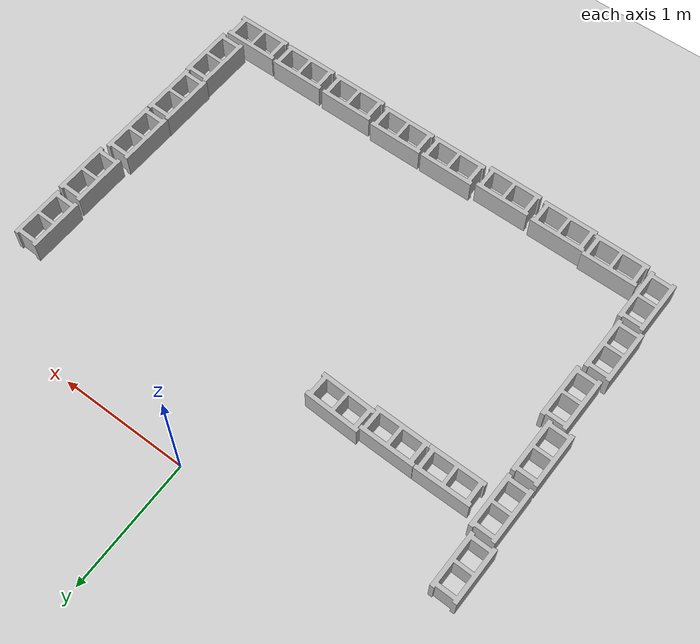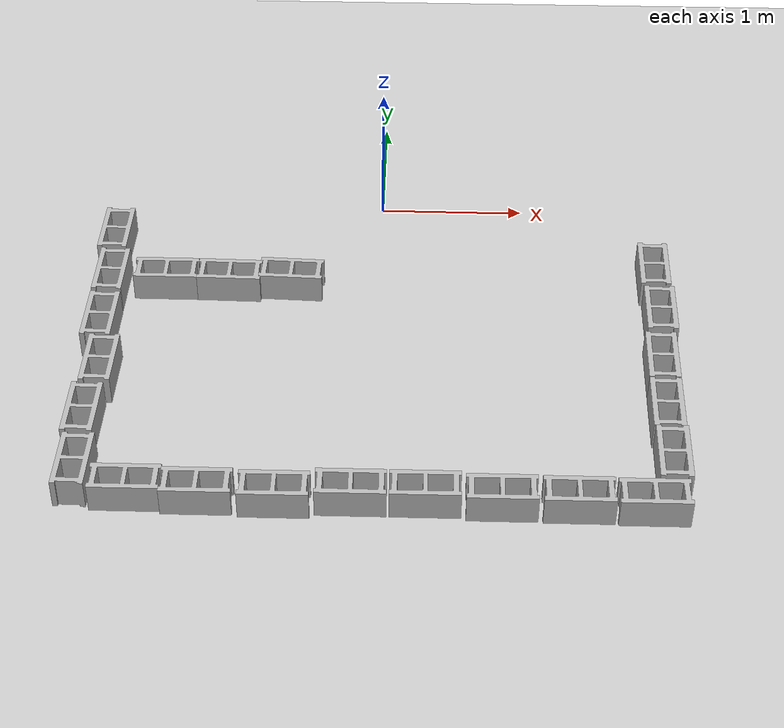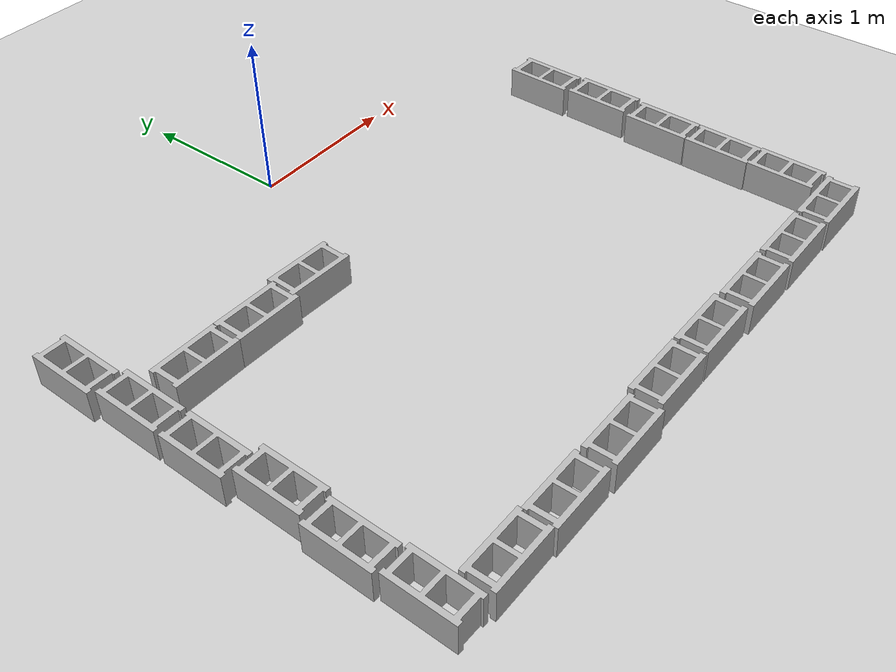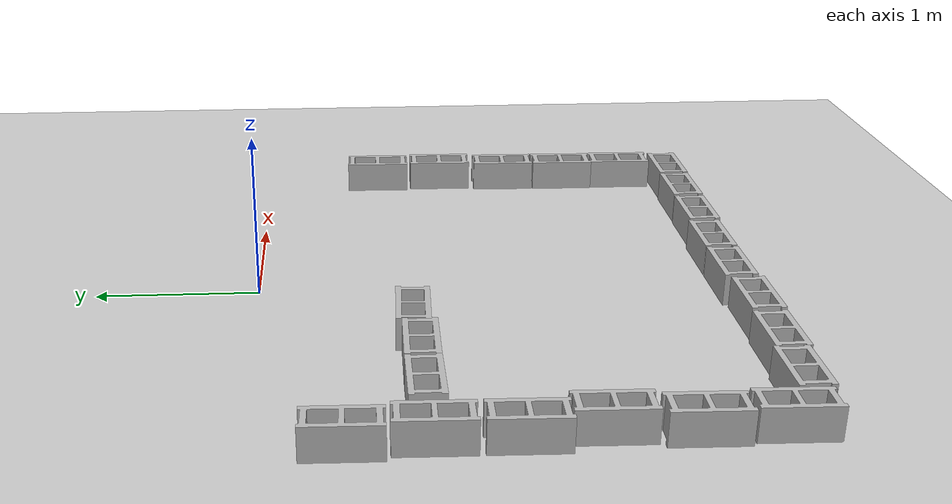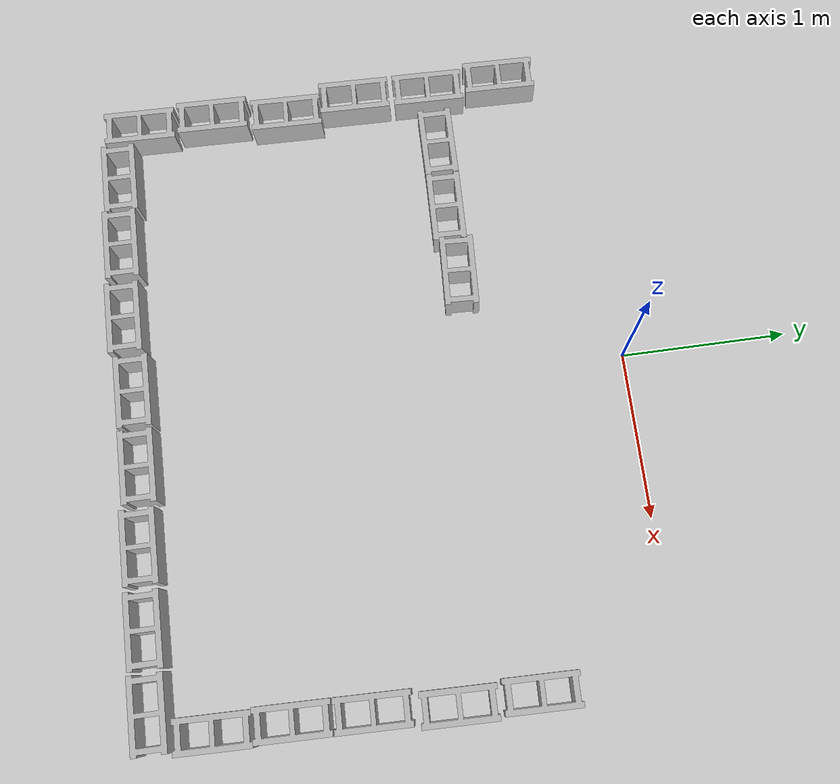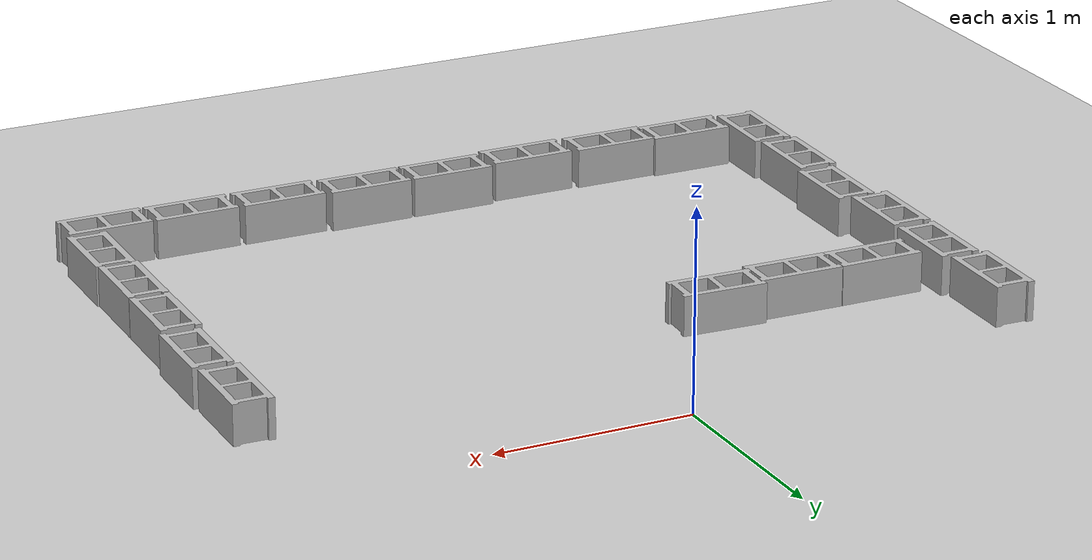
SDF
<sdf version="1.6">
 <world name="default">
  <model name="ground_plane">
   <static>1</static>
   <link name="link">
    <collision name="collision">
     <geometry><plane><normal>0 0 1</normal><size>100 100</size></plane></geometry>
     <surface>
      <contact><collide_bitmask>65535</collide_bitmask></contact>
      <friction><ode><mu>100</mu><mu2>50</mu2></ode></friction>
     </surface>
    </collision>
    <visual name="visual">
     <cast_shadows>0</cast_shadows>
     <geometry><plane><normal>0 0 1</normal><size>100 100</size></plane></geometry>
     <material>
      <script><uri>file://media/materials/scripts/gazebo.material</uri><name>Gazebo/Grey</name></script>
     </material>
    </visual>
   </link>
  </model>
  <model name="cinder_block_2_clone_clone_4">
   <link name="link">
    <inertial>
     <pose>0 0 0.1016 0 -0 0</pose>
     <mass>5</mass>
     <inertia>
      <ixx>0.028705</ixx>
      <ixy>0</ixy>
      <iyy>0.073708</iyy>
      <ixz>0</ixz>
      <iyz>0</iyz>
      <izz>0.06908</izz>
     </inertia>
    </inertial>
    <visual name="visual">
     <geometry><mesh><uri>model://cinder_block/meshes/cinder_block.dae</uri></mesh></geometry>
    </visual>
    <collision name="left">
     <pose>0 -0.08465 0.1016 0 -0 0</pose>
     <geometry><box><size>0.43495 0.0339 0.2032</size></box></geometry>
     <surface>
      <contact><ode><max_vel>0.1</max_vel><min_depth>0.001</min_depth></ode></contact>
      <friction><ode><mu>1</mu><mu2>1</mu2></ode></friction>
     </surface>
    </collision>
    <collision name="right">
     <pose>0 0.08465 0.1016 0 -0 0</pose>
     <geometry><box><size>0.43495 0.0339 0.2032</size></box></geometry>
     <surface>
      <contact><ode><max_vel>0.1</max_vel><min_depth>0.001</min_depth></ode></contact>
      <friction><ode><mu>1</mu><mu2>1</mu2></ode></friction>
     </surface>
    </collision>
    <collision name="front">
     <pose>0.18625 0 0.1016 0 -0 0</pose>
     <geometry><box><size>0.0339 0.1354 0.203</size></box></geometry>
     <surface>
      <contact><ode><max_vel>0.1</max_vel><min_depth>0.001</min_depth></ode></contact>
      <friction><ode><mu>1</mu><mu2>1</mu2></ode></friction>
     </surface>
    </collision>
    <collision name="middle">
     <pose>0 0 0.1016 0 -0 0</pose>
     <geometry><box><size>0.0339 0.1354 0.203</size></box></geometry>
     <surface>
      <contact><ode><max_vel>0.1</max_vel><min_depth>0.001</min_depth></ode></contact>
      <friction><ode><mu>1</mu><mu2>1</mu2></ode></friction>
     </surface>
    </collision>
    <collision name="back">
     <pose>-0.18625 0 0.1016 0 -0 0</pose>
     <geometry><box><size>0.0339 0.1354 0.203</size></box></geometry>
     <surface>
      <contact><ode><max_vel>0.1</max_vel><min_depth>0.001</min_depth></ode></contact>
      <friction><ode><mu>1</mu><mu2>1</mu2></ode></friction>
     </surface>
    </collision>
   </link>
   <pose>1.88676 -0.795198 -1.2e-05 5e-06 0 -1.59062</pose>
  </model>
  <model name="cinder_block_2_clone_clone_5">
   <link name="link">
    <inertial>
     <pose>0 0 0.1016 0 -0 0</pose>
     <mass>5</mass>
     <inertia>
      <ixx>0.028705</ixx>
      <ixy>0</ixy>
      <iyy>0.073708</iyy>
      <ixz>0</ixz>
      <iyz>0</iyz>
      <izz>0.06908</izz>
     </inertia>
    </inertial>
    <visual name="visual">
     <geometry><mesh><uri>model://cinder_block/meshes/cinder_block.dae</uri></mesh></geometry>
    </visual>
    <collision name="left">
     <pose>0 -0.08465 0.1016 0 -0 0</pose>
     <geometry><box><size>0.43495 0.0339 0.2032</size></box></geometry>
     <surface>
      <contact><ode><max_vel>0.1</max_vel><min_depth>0.001</min_depth></ode></contact>
      <friction><ode><mu>1</mu><mu2>1</mu2></ode></friction>
     </surface>
    </collision>
    <collision name="right">
     <pose>0 0.08465 0.1016 0 -0 0</pose>
     <geometry><box><size>0.43495 0.0339 0.2032</size></box></geometry>
     <surface>
      <contact><ode><max_vel>0.1</max_vel><min_depth>0.001</min_depth></ode></contact>
      <friction><ode><mu>1</mu><mu2>1</mu2></ode></friction>
     </surface>
    </collision>
    <collision name="front">
     <pose>0.18625 0 0.1016 0 -0 0</pose>
     <geometry><box><size>0.0339 0.1354 0.203</size></box></geometry>
     <surface>
      <contact><ode><max_vel>0.1</max_vel><min_depth>0.001</min_depth></ode></contact>
      <friction><ode><mu>1</mu><mu2>1</mu2></ode></friction>
     </surface>
    </collision>
    <collision name="middle">
     <pose>0 0 0.1016 0 -0 0</pose>
     <geometry><box><size>0.0339 0.1354 0.203</size></box></geometry>
     <surface>
      <contact><ode><max_vel>0.1</max_vel><min_depth>0.001</min_depth></ode></contact>
      <friction><ode><mu>1</mu><mu2>1</mu2></ode></friction>
     </surface>
    </collision>
    <collision name="back">
     <pose>-0.18625 0 0.1016 0 -0 0</pose>
     <geometry><box><size>0.0339 0.1354 0.203</size></box></geometry>
     <surface>
      <contact><ode><max_vel>0.1</max_vel><min_depth>0.001</min_depth></ode></contact>
      <friction><ode><mu>1</mu><mu2>1</mu2></ode></friction>
     </surface>
    </collision>
   </link>
   <pose>1.89433 -1.2558 -1.2e-05 5e-06 0 -1.59062</pose>
  </model>
  <model name="cinder_block_2_clone_clone_6">
   <link name="link">
    <inertial>
     <pose>0 0 0.1016 0 -0 0</pose>
     <mass>5</mass>
     <inertia>
      <ixx>0.028705</ixx>
      <ixy>0</ixy>
      <iyy>0.073708</iyy>
      <ixz>0</ixz>
      <iyz>0</iyz>
      <izz>0.06908</izz>
     </inertia>
    </inertial>
    <visual name="visual">
     <geometry><mesh><uri>model://cinder_block/meshes/cinder_block.dae</uri></mesh></geometry>
    </visual>
    <collision name="left">
     <pose>0 -0.08465 0.1016 0 -0 0</pose>
     <geometry><box><size>0.43495 0.0339 0.2032</size></box></geometry>
     <surface>
      <contact><ode><max_vel>0.1</max_vel><min_depth>0.001</min_depth></ode></contact>
      <friction><ode><mu>1</mu><mu2>1</mu2></ode></friction>
     </surface>
    </collision>
    <collision name="right">
     <pose>0 0.08465 0.1016 0 -0 0</pose>
     <geometry><box><size>0.43495 0.0339 0.2032</size></box></geometry>
     <surface>
      <contact><ode><max_vel>0.1</max_vel><min_depth>0.001</min_depth></ode></contact>
      <friction><ode><mu>1</mu><mu2>1</mu2></ode></friction>
     </surface>
    </collision>
    <collision name="front">
     <pose>0.18625 0 0.1016 0 -0 0</pose>
     <geometry><box><size>0.0339 0.1354 0.203</size></box></geometry>
     <surface>
      <contact><ode><max_vel>0.1</max_vel><min_depth>0.001</min_depth></ode></contact>
      <friction><ode><mu>1</mu><mu2>1</mu2></ode></friction>
     </surface>
    </collision>
    <collision name="middle">
     <pose>0 0 0.1016 0 -0 0</pose>
     <geometry><box><size>0.0339 0.1354 0.203</size></box></geometry>
     <surface>
      <contact><ode><max_vel>0.1</max_vel><min_depth>0.001</min_depth></ode></contact>
      <friction><ode><mu>1</mu><mu2>1</mu2></ode></friction>
     </surface>
    </collision>
    <collision name="back">
     <pose>-0.18625 0 0.1016 0 -0 0</pose>
     <geometry><box><size>0.0339 0.1354 0.203</size></box></geometry>
     <surface>
      <contact><ode><max_vel>0.1</max_vel><min_depth>0.001</min_depth></ode></contact>
      <friction><ode><mu>1</mu><mu2>1</mu2></ode></friction>
     </surface>
    </collision>
   </link>
   <pose>1.86231 -1.72734 -1.2e-05 5e-06 0 -1.59062</pose>
  </model>
  <model name="cinder_block_2_clone_clone_7">
   <link name="link">
    <inertial>
     <pose>0 0 0.1016 0 -0 0</pose>
     <mass>5</mass>
     <inertia>
      <ixx>0.028705</ixx>
      <ixy>0</ixy>
      <iyy>0.073708</iyy>
      <ixz>0</ixz>
      <iyz>0</iyz>
      <izz>0.06908</izz>
     </inertia>
    </inertial>
    <visual name="visual">
     <geometry><mesh><uri>model://cinder_block/meshes/cinder_block.dae</uri></mesh></geometry>
    </visual>
    <collision name="left">
     <pose>0 -0.08465 0.1016 0 -0 0</pose>
     <geometry><box><size>0.43495 0.0339 0.2032</size></box></geometry>
     <surface>
      <contact><ode><max_vel>0.1</max_vel><min_depth>0.001</min_depth></ode></contact>
      <friction><ode><mu>1</mu><mu2>1</mu2></ode></friction>
     </surface>
    </collision>
    <collision name="right">
     <pose>0 0.08465 0.1016 0 -0 0</pose>
     <geometry><box><size>0.43495 0.0339 0.2032</size></box></geometry>
     <surface>
      <contact><ode><max_vel>0.1</max_vel><min_depth>0.001</min_depth></ode></contact>
      <friction><ode><mu>1</mu><mu2>1</mu2></ode></friction>
     </surface>
    </collision>
    <collision name="front">
     <pose>0.18625 0 0.1016 0 -0 0</pose>
     <geometry><box><size>0.0339 0.1354 0.203</size></box></geometry>
     <surface>
      <contact><ode><max_vel>0.1</max_vel><min_depth>0.001</min_depth></ode></contact>
      <friction><ode><mu>1</mu><mu2>1</mu2></ode></friction>
     </surface>
    </collision>
    <collision name="middle">
     <pose>0 0 0.1016 0 -0 0</pose>
     <geometry><box><size>0.0339 0.1354 0.203</size></box></geometry>
     <surface>
      <contact><ode><max_vel>0.1</max_vel><min_depth>0.001</min_depth></ode></contact>
      <friction><ode><mu>1</mu><mu2>1</mu2></ode></friction>
     </surface>
    </collision>
    <collision name="back">
     <pose>-0.18625 0 0.1016 0 -0 0</pose>
     <geometry><box><size>0.0339 0.1354 0.203</size></box></geometry>
     <surface>
      <contact><ode><max_vel>0.1</max_vel><min_depth>0.001</min_depth></ode></contact>
      <friction><ode><mu>1</mu><mu2>1</mu2></ode></friction>
     </surface>
    </collision>
   </link>
   <pose>1.85298 -2.16877 -1.2e-05 4e-06 -0 -1.59037</pose>
  </model>
  <model name="cinder_block_2_clone_clone_8">
   <link name="link">
    <inertial>
     <pose>0 0 0.1016 0 -0 0</pose>
     <mass>5</mass>
     <inertia>
      <ixx>0.028705</ixx>
      <ixy>0</ixy>
      <iyy>0.073708</iyy>
      <ixz>0</ixz>
      <iyz>0</iyz>
      <izz>0.06908</izz>
     </inertia>
    </inertial>
    <visual name="visual">
     <geometry><mesh><uri>model://cinder_block/meshes/cinder_block.dae</uri></mesh></geometry>
    </visual>
    <collision name="left">
     <pose>0 -0.08465 0.1016 0 -0 0</pose>
     <geometry><box><size>0.43495 0.0339 0.2032</size></box></geometry>
     <surface>
      <contact><ode><max_vel>0.1</max_vel><min_depth>0.001</min_depth></ode></contact>
      <friction><ode><mu>1</mu><mu2>1</mu2></ode></friction>
     </surface>
    </collision>
    <collision name="right">
     <pose>0 0.08465 0.1016 0 -0 0</pose>
     <geometry><box><size>0.43495 0.0339 0.2032</size></box></geometry>
     <surface>
      <contact><ode><max_vel>0.1</max_vel><min_depth>0.001</min_depth></ode></contact>
      <friction><ode><mu>1</mu><mu2>1</mu2></ode></friction>
     </surface>
    </collision>
    <collision name="front">
     <pose>0.18625 0 0.1016 0 -0 0</pose>
     <geometry><box><size>0.0339 0.1354 0.203</size></box></geometry>
     <surface>
      <contact><ode><max_vel>0.1</max_vel><min_depth>0.001</min_depth></ode></contact>
      <friction><ode><mu>1</mu><mu2>1</mu2></ode></friction>
     </surface>
    </collision>
    <collision name="middle">
     <pose>0 0 0.1016 0 -0 0</pose>
     <geometry><box><size>0.0339 0.1354 0.203</size></box></geometry>
     <surface>
      <contact><ode><max_vel>0.1</max_vel><min_depth>0.001</min_depth></ode></contact>
      <friction><ode><mu>1</mu><mu2>1</mu2></ode></friction>
     </surface>
    </collision>
    <collision name="back">
     <pose>-0.18625 0 0.1016 0 -0 0</pose>
     <geometry><box><size>0.0339 0.1354 0.203</size></box></geometry>
     <surface>
      <contact><ode><max_vel>0.1</max_vel><min_depth>0.001</min_depth></ode></contact>
      <friction><ode><mu>1</mu><mu2>1</mu2></ode></friction>
     </surface>
    </collision>
   </link>
   <pose>1.85442 -2.60304 -1.2e-05 4e-06 -0 -1.59037</pose>
  </model>
  <model name="cinder_block_1_clone">
   <link name="link">
    <inertial>
     <pose>0 0 0.1016 0 -0 0</pose>
     <mass>5</mass>
     <inertia>
      <ixx>0.028705</ixx>
      <ixy>0</ixy>
      <iyy>0.073708</iyy>
      <ixz>0</ixz>
      <iyz>0</iyz>
      <izz>0.06908</izz>
     </inertia>
    </inertial>
    <visual name="visual">
     <geometry><mesh><uri>model://cinder_block/meshes/cinder_block.dae</uri></mesh></geometry>
    </visual>
    <collision name="left">
     <pose>0 -0.08465 0.1016 0 -0 0</pose>
     <geometry><box><size>0.43495 0.0339 0.2032</size></box></geometry>
     <surface>
      <contact><ode><max_vel>0.1</max_vel><min_depth>0.001</min_depth></ode></contact>
      <friction><ode><mu>1</mu><mu2>1</mu2></ode></friction>
     </surface>
    </collision>
    <collision name="right">
     <pose>0 0.08465 0.1016 0 -0 0</pose>
     <geometry><box><size>0.43495 0.0339 0.2032</size></box></geometry>
     <surface>
      <contact><ode><max_vel>0.1</max_vel><min_depth>0.001</min_depth></ode></contact>
      <friction><ode><mu>1</mu><mu2>1</mu2></ode></friction>
     </surface>
    </collision>
    <collision name="front">
     <pose>0.18625 0 0.1016 0 -0 0</pose>
     <geometry><box><size>0.0339 0.1354 0.203</size></box></geometry>
     <surface>
      <contact><ode><max_vel>0.1</max_vel><min_depth>0.001</min_depth></ode></contact>
      <friction><ode><mu>1</mu><mu2>1</mu2></ode></friction>
     </surface>
    </collision>
    <collision name="middle">
     <pose>0 0 0.1016 0 -0 0</pose>
     <geometry><box><size>0.0339 0.1354 0.203</size></box></geometry>
     <surface>
      <contact><ode><max_vel>0.1</max_vel><min_depth>0.001</min_depth></ode></contact>
      <friction><ode><mu>1</mu><mu2>1</mu2></ode></friction>
     </surface>
    </collision>
    <collision name="back">
     <pose>-0.18625 0 0.1016 0 -0 0</pose>
     <geometry><box><size>0.0339 0.1354 0.203</size></box></geometry>
     <surface>
      <contact><ode><max_vel>0.1</max_vel><min_depth>0.001</min_depth></ode></contact>
      <friction><ode><mu>1</mu><mu2>1</mu2></ode></friction>
     </surface>
    </collision>
   </link>
   <pose>1.70955 -2.94654 -6e-06 5e-06 2.5e-05 0</pose>
  </model>
  <model name="cinder_block_1_clone_0">
   <link name="link">
    <inertial>
     <pose>0 0 0.1016 0 -0 0</pose>
     <mass>5</mass>
     <inertia>
      <ixx>0.028705</ixx>
      <ixy>0</ixy>
      <iyy>0.073708</iyy>
      <ixz>0</ixz>
      <iyz>0</iyz>
      <izz>0.06908</izz>
     </inertia>
    </inertial>
    <visual name="visual">
     <geometry><mesh><uri>model://cinder_block/meshes/cinder_block.dae</uri></mesh></geometry>
    </visual>
    <collision name="left">
     <pose>0 -0.08465 0.1016 0 -0 0</pose>
     <geometry><box><size>0.43495 0.0339 0.2032</size></box></geometry>
     <surface>
      <contact><ode><max_vel>0.1</max_vel><min_depth>0.001</min_depth></ode></contact>
      <friction><ode><mu>1</mu><mu2>1</mu2></ode></friction>
     </surface>
    </collision>
    <collision name="right">
     <pose>0 0.08465 0.1016 0 -0 0</pose>
     <geometry><box><size>0.43495 0.0339 0.2032</size></box></geometry>
     <surface>
      <contact><ode><max_vel>0.1</max_vel><min_depth>0.001</min_depth></ode></contact>
      <friction><ode><mu>1</mu><mu2>1</mu2></ode></friction>
     </surface>
    </collision>
    <collision name="front">
     <pose>0.18625 0 0.1016 0 -0 0</pose>
     <geometry><box><size>0.0339 0.1354 0.203</size></box></geometry>
     <surface>
      <contact><ode><max_vel>0.1</max_vel><min_depth>0.001</min_depth></ode></contact>
      <friction><ode><mu>1</mu><mu2>1</mu2></ode></friction>
     </surface>
    </collision>
    <collision name="middle">
     <pose>0 0 0.1016 0 -0 0</pose>
     <geometry><box><size>0.0339 0.1354 0.203</size></box></geometry>
     <surface>
      <contact><ode><max_vel>0.1</max_vel><min_depth>0.001</min_depth></ode></contact>
      <friction><ode><mu>1</mu><mu2>1</mu2></ode></friction>
     </surface>
    </collision>
    <collision name="back">
     <pose>-0.18625 0 0.1016 0 -0 0</pose>
     <geometry><box><size>0.0339 0.1354 0.203</size></box></geometry>
     <surface>
      <contact><ode><max_vel>0.1</max_vel><min_depth>0.001</min_depth></ode></contact>
      <friction><ode><mu>1</mu><mu2>1</mu2></ode></friction>
     </surface>
    </collision>
   </link>
   <pose>1.25685 -2.9397 -6e-06 5e-06 2.5e-05 0</pose>
  </model>
  <model name="cinder_block_1_clone_1">
   <link name="link">
    <inertial>
     <pose>0 0 0.1016 0 -0 0</pose>
     <mass>5</mass>
     <inertia>
      <ixx>0.028705</ixx>
      <ixy>0</ixy>
      <iyy>0.073708</iyy>
      <ixz>0</ixz>
      <iyz>0</iyz>
      <izz>0.06908</izz>
     </inertia>
    </inertial>
    <visual name="visual">
     <geometry><mesh><uri>model://cinder_block/meshes/cinder_block.dae</uri></mesh></geometry>
    </visual>
    <collision name="left">
     <pose>0 -0.08465 0.1016 0 -0 0</pose>
     <geometry><box><size>0.43495 0.0339 0.2032</size></box></geometry>
     <surface>
      <contact><ode><max_vel>0.1</max_vel><min_depth>0.001</min_depth></ode></contact>
      <friction><ode><mu>1</mu><mu2>1</mu2></ode></friction>
     </surface>
    </collision>
    <collision name="right">
     <pose>0 0.08465 0.1016 0 -0 0</pose>
     <geometry><box><size>0.43495 0.0339 0.2032</size></box></geometry>
     <surface>
      <contact><ode><max_vel>0.1</max_vel><min_depth>0.001</min_depth></ode></contact>
      <friction><ode><mu>1</mu><mu2>1</mu2></ode></friction>
     </surface>
    </collision>
    <collision name="front">
     <pose>0.18625 0 0.1016 0 -0 0</pose>
     <geometry><box><size>0.0339 0.1354 0.203</size></box></geometry>
     <surface>
      <contact><ode><max_vel>0.1</max_vel><min_depth>0.001</min_depth></ode></contact>
      <friction><ode><mu>1</mu><mu2>1</mu2></ode></friction>
     </surface>
    </collision>
    <collision name="middle">
     <pose>0 0 0.1016 0 -0 0</pose>
     <geometry><box><size>0.0339 0.1354 0.203</size></box></geometry>
     <surface>
      <contact><ode><max_vel>0.1</max_vel><min_depth>0.001</min_depth></ode></contact>
      <friction><ode><mu>1</mu><mu2>1</mu2></ode></friction>
     </surface>
    </collision>
    <collision name="back">
     <pose>-0.18625 0 0.1016 0 -0 0</pose>
     <geometry><box><size>0.0339 0.1354 0.203</size></box></geometry>
     <surface>
      <contact><ode><max_vel>0.1</max_vel><min_depth>0.001</min_depth></ode></contact>
      <friction><ode><mu>1</mu><mu2>1</mu2></ode></friction>
     </surface>
    </collision>
   </link>
   <pose>0.793336 -2.93487 -6e-06 5e-06 2.5e-05 0</pose>
  </model>
  <model name="cinder_block_1_clone_2">
   <link name="link">
    <inertial>
     <pose>0 0 0.1016 0 -0 0</pose>
     <mass>5</mass>
     <inertia>
      <ixx>0.028705</ixx>
      <ixy>0</ixy>
      <iyy>0.073708</iyy>
      <ixz>0</ixz>
      <iyz>0</iyz>
      <izz>0.06908</izz>
     </inertia>
    </inertial>
    <visual name="visual">
     <geometry><mesh><uri>model://cinder_block/meshes/cinder_block.dae</uri></mesh></geometry>
    </visual>
    <collision name="left">
     <pose>0 -0.08465 0.1016 0 -0 0</pose>
     <geometry><box><size>0.43495 0.0339 0.2032</size></box></geometry>
     <surface>
      <contact><ode><max_vel>0.1</max_vel><min_depth>0.001</min_depth></ode></contact>
      <friction><ode><mu>1</mu><mu2>1</mu2></ode></friction>
     </surface>
    </collision>
    <collision name="right">
     <pose>0 0.08465 0.1016 0 -0 0</pose>
     <geometry><box><size>0.43495 0.0339 0.2032</size></box></geometry>
     <surface>
      <contact><ode><max_vel>0.1</max_vel><min_depth>0.001</min_depth></ode></contact>
      <friction><ode><mu>1</mu><mu2>1</mu2></ode></friction>
     </surface>
    </collision>
    <collision name="front">
     <pose>0.18625 0 0.1016 0 -0 0</pose>
     <geometry><box><size>0.0339 0.1354 0.203</size></box></geometry>
     <surface>
      <contact><ode><max_vel>0.1</max_vel><min_depth>0.001</min_depth></ode></contact>
      <friction><ode><mu>1</mu><mu2>1</mu2></ode></friction>
     </surface>
    </collision>
    <collision name="middle">
     <pose>0 0 0.1016 0 -0 0</pose>
     <geometry><box><size>0.0339 0.1354 0.203</size></box></geometry>
     <surface>
      <contact><ode><max_vel>0.1</max_vel><min_depth>0.001</min_depth></ode></contact>
      <friction><ode><mu>1</mu><mu2>1</mu2></ode></friction>
     </surface>
    </collision>
    <collision name="back">
     <pose>-0.18625 0 0.1016 0 -0 0</pose>
     <geometry><box><size>0.0339 0.1354 0.203</size></box></geometry>
     <surface>
      <contact><ode><max_vel>0.1</max_vel><min_depth>0.001</min_depth></ode></contact>
      <friction><ode><mu>1</mu><mu2>1</mu2></ode></friction>
     </surface>
    </collision>
   </link>
   <pose>0.330626 -2.91648 -6e-06 5e-06 2.5e-05 0</pose>
  </model>
  <model name="cinder_block_1_clone_3">
   <link name="link">
    <inertial>
     <pose>0 0 0.1016 0 -0 0</pose>
     <mass>5</mass>
     <inertia>
      <ixx>0.028705</ixx>
      <ixy>0</ixy>
      <iyy>0.073708</iyy>
      <ixz>0</ixz>
      <iyz>0</iyz>
      <izz>0.06908</izz>
     </inertia>
    </inertial>
    <visual name="visual">
     <geometry><mesh><uri>model://cinder_block/meshes/cinder_block.dae</uri></mesh></geometry>
    </visual>
    <collision name="left">
     <pose>0 -0.08465 0.1016 0 -0 0</pose>
     <geometry><box><size>0.43495 0.0339 0.2032</size></box></geometry>
     <surface>
      <contact><ode><max_vel>0.1</max_vel><min_depth>0.001</min_depth></ode></contact>
      <friction><ode><mu>1</mu><mu2>1</mu2></ode></friction>
     </surface>
    </collision>
    <collision name="right">
     <pose>0 0.08465 0.1016 0 -0 0</pose>
     <geometry><box><size>0.43495 0.0339 0.2032</size></box></geometry>
     <surface>
      <contact><ode><max_vel>0.1</max_vel><min_depth>0.001</min_depth></ode></contact>
      <friction><ode><mu>1</mu><mu2>1</mu2></ode></friction>
     </surface>
    </collision>
    <collision name="front">
     <pose>0.18625 0 0.1016 0 -0 0</pose>
     <geometry><box><size>0.0339 0.1354 0.203</size></box></geometry>
     <surface>
      <contact><ode><max_vel>0.1</max_vel><min_depth>0.001</min_depth></ode></contact>
      <friction><ode><mu>1</mu><mu2>1</mu2></ode></friction>
     </surface>
    </collision>
    <collision name="middle">
     <pose>0 0 0.1016 0 -0 0</pose>
     <geometry><box><size>0.0339 0.1354 0.203</size></box></geometry>
     <surface>
      <contact><ode><max_vel>0.1</max_vel><min_depth>0.001</min_depth></ode></contact>
      <friction><ode><mu>1</mu><mu2>1</mu2></ode></friction>
     </surface>
    </collision>
    <collision name="back">
     <pose>-0.18625 0 0.1016 0 -0 0</pose>
     <geometry><box><size>0.0339 0.1354 0.203</size></box></geometry>
     <surface>
      <contact><ode><max_vel>0.1</max_vel><min_depth>0.001</min_depth></ode></contact>
      <friction><ode><mu>1</mu><mu2>1</mu2></ode></friction>
     </surface>
    </collision>
   </link>
   <pose>-0.120653 -2.91612 -6e-06 4e-06 2.5e-05 -0</pose>
  </model>
  <model name="cinder_block_1_clone_4">
   <link name="link">
    <inertial>
     <pose>0 0 0.1016 0 -0 0</pose>
     <mass>5</mass>
     <inertia>
      <ixx>0.028705</ixx>
      <ixy>0</ixy>
      <iyy>0.073708</iyy>
      <ixz>0</ixz>
      <iyz>0</iyz>
      <izz>0.06908</izz>
     </inertia>
    </inertial>
    <visual name="visual">
     <geometry><mesh><uri>model://cinder_block/meshes/cinder_block.dae</uri></mesh></geometry>
    </visual>
    <collision name="left">
     <pose>0 -0.08465 0.1016 0 -0 0</pose>
     <geometry><box><size>0.43495 0.0339 0.2032</size></box></geometry>
     <surface>
      <contact><ode><max_vel>0.1</max_vel><min_depth>0.001</min_depth></ode></contact>
      <friction><ode><mu>1</mu><mu2>1</mu2></ode></friction>
     </surface>
    </collision>
    <collision name="right">
     <pose>0 0.08465 0.1016 0 -0 0</pose>
     <geometry><box><size>0.43495 0.0339 0.2032</size></box></geometry>
     <surface>
      <contact><ode><max_vel>0.1</max_vel><min_depth>0.001</min_depth></ode></contact>
      <friction><ode><mu>1</mu><mu2>1</mu2></ode></friction>
     </surface>
    </collision>
    <collision name="front">
     <pose>0.18625 0 0.1016 0 -0 0</pose>
     <geometry><box><size>0.0339 0.1354 0.203</size></box></geometry>
     <surface>
      <contact><ode><max_vel>0.1</max_vel><min_depth>0.001</min_depth></ode></contact>
      <friction><ode><mu>1</mu><mu2>1</mu2></ode></friction>
     </surface>
    </collision>
    <collision name="middle">
     <pose>0 0 0.1016 0 -0 0</pose>
     <geometry><box><size>0.0339 0.1354 0.203</size></box></geometry>
     <surface>
      <contact><ode><max_vel>0.1</max_vel><min_depth>0.001</min_depth></ode></contact>
      <friction><ode><mu>1</mu><mu2>1</mu2></ode></friction>
     </surface>
    </collision>
    <collision name="back">
     <pose>-0.18625 0 0.1016 0 -0 0</pose>
     <geometry><box><size>0.0339 0.1354 0.203</size></box></geometry>
     <surface>
      <contact><ode><max_vel>0.1</max_vel><min_depth>0.001</min_depth></ode></contact>
      <friction><ode><mu>1</mu><mu2>1</mu2></ode></friction>
     </surface>
    </collision>
   </link>
   <pose>-0.583641 -2.94236 -6e-06 4e-06 2.5e-05 -0</pose>
  </model>
  <model name="cinder_block_1_clone_5">
   <link name="link">
    <inertial>
     <pose>0 0 0.1016 0 -0 0</pose>
     <mass>5</mass>
     <inertia>
      <ixx>0.028705</ixx>
      <ixy>0</ixy>
      <iyy>0.073708</iyy>
      <ixz>0</ixz>
      <iyz>0</iyz>
      <izz>0.06908</izz>
     </inertia>
    </inertial>
    <visual name="visual">
     <geometry><mesh><uri>model://cinder_block/meshes/cinder_block.dae</uri></mesh></geometry>
    </visual>
    <collision name="left">
     <pose>0 -0.08465 0.1016 0 -0 0</pose>
     <geometry><box><size>0.43495 0.0339 0.2032</size></box></geometry>
     <surface>
      <contact><ode><max_vel>0.1</max_vel><min_depth>0.001</min_depth></ode></contact>
      <friction><ode><mu>1</mu><mu2>1</mu2></ode></friction>
     </surface>
    </collision>
    <collision name="right">
     <pose>0 0.08465 0.1016 0 -0 0</pose>
     <geometry><box><size>0.43495 0.0339 0.2032</size></box></geometry>
     <surface>
      <contact><ode><max_vel>0.1</max_vel><min_depth>0.001</min_depth></ode></contact>
      <friction><ode><mu>1</mu><mu2>1</mu2></ode></friction>
     </surface>
    </collision>
    <collision name="front">
     <pose>0.18625 0 0.1016 0 -0 0</pose>
     <geometry><box><size>0.0339 0.1354 0.203</size></box></geometry>
     <surface>
      <contact><ode><max_vel>0.1</max_vel><min_depth>0.001</min_depth></ode></contact>
      <friction><ode><mu>1</mu><mu2>1</mu2></ode></friction>
     </surface>
    </collision>
    <collision name="middle">
     <pose>0 0 0.1016 0 -0 0</pose>
     <geometry><box><size>0.0339 0.1354 0.203</size></box></geometry>
     <surface>
      <contact><ode><max_vel>0.1</max_vel><min_depth>0.001</min_depth></ode></contact>
      <friction><ode><mu>1</mu><mu2>1</mu2></ode></friction>
     </surface>
    </collision>
    <collision name="back">
     <pose>-0.18625 0 0.1016 0 -0 0</pose>
     <geometry><box><size>0.0339 0.1354 0.203</size></box></geometry>
     <surface>
      <contact><ode><max_vel>0.1</max_vel><min_depth>0.001</min_depth></ode></contact>
      <friction><ode><mu>1</mu><mu2>1</mu2></ode></friction>
     </surface>
    </collision>
   </link>
   <pose>-1.05287 -2.93023 -6e-06 2e-06 3e-05 -0.000831</pose>
  </model>
  <model name="cinder_block_1_clone_6">
   <link name="link">
    <inertial>
     <pose>0 0 0.1016 0 -0 0</pose>
     <mass>5</mass>
     <inertia>
      <ixx>0.028705</ixx>
      <ixy>0</ixy>
      <iyy>0.073708</iyy>
      <ixz>0</ixz>
      <iyz>0</iyz>
      <izz>0.06908</izz>
     </inertia>
    </inertial>
    <visual name="visual">
     <geometry><mesh><uri>model://cinder_block/meshes/cinder_block.dae</uri></mesh></geometry>
    </visual>
    <collision name="left">
     <pose>0 -0.08465 0.1016 0 -0 0</pose>
     <geometry><box><size>0.43495 0.0339 0.2032</size></box></geometry>
     <surface>
      <contact><ode><max_vel>0.1</max_vel><min_depth>0.001</min_depth></ode></contact>
      <friction><ode><mu>1</mu><mu2>1</mu2></ode></friction>
     </surface>
    </collision>
    <collision name="right">
     <pose>0 0.08465 0.1016 0 -0 0</pose>
     <geometry><box><size>0.43495 0.0339 0.2032</size></box></geometry>
     <surface>
      <contact><ode><max_vel>0.1</max_vel><min_depth>0.001</min_depth></ode></contact>
      <friction><ode><mu>1</mu><mu2>1</mu2></ode></friction>
     </surface>
    </collision>
    <collision name="front">
     <pose>0.18625 0 0.1016 0 -0 0</pose>
     <geometry><box><size>0.0339 0.1354 0.203</size></box></geometry>
     <surface>
      <contact><ode><max_vel>0.1</max_vel><min_depth>0.001</min_depth></ode></contact>
      <friction><ode><mu>1</mu><mu2>1</mu2></ode></friction>
     </surface>
    </collision>
    <collision name="middle">
     <pose>0 0 0.1016 0 -0 0</pose>
     <geometry><box><size>0.0339 0.1354 0.203</size></box></geometry>
     <surface>
      <contact><ode><max_vel>0.1</max_vel><min_depth>0.001</min_depth></ode></contact>
      <friction><ode><mu>1</mu><mu2>1</mu2></ode></friction>
     </surface>
    </collision>
    <collision name="back">
     <pose>-0.18625 0 0.1016 0 -0 0</pose>
     <geometry><box><size>0.0339 0.1354 0.203</size></box></geometry>
     <surface>
      <contact><ode><max_vel>0.1</max_vel><min_depth>0.001</min_depth></ode></contact>
      <friction><ode><mu>1</mu><mu2>1</mu2></ode></friction>
     </surface>
    </collision>
   </link>
   <pose>-1.48702 -2.9119 -1.3e-05 0 -8e-06 -0.000853</pose>
  </model>
  <model name="cinder_block_2_clone_clone_6_clone">
   <link name="link">
    <inertial>
     <pose>0 0 0.1016 0 -0 0</pose>
     <mass>5</mass>
     <inertia>
      <ixx>0.028705</ixx>
      <ixy>0</ixy>
      <iyy>0.073708</iyy>
      <ixz>0</ixz>
      <iyz>0</iyz>
      <izz>0.06908</izz>
     </inertia>
    </inertial>
    <visual name="visual">
     <geometry><mesh><uri>model://cinder_block/meshes/cinder_block.dae</uri></mesh></geometry>
    </visual>
    <collision name="left">
     <pose>0 -0.08465 0.1016 0 -0 0</pose>
     <geometry><box><size>0.43495 0.0339 0.2032</size></box></geometry>
     <surface>
      <contact><ode><max_vel>0.1</max_vel><min_depth>0.001</min_depth></ode></contact>
      <friction><ode><mu>1</mu><mu2>1</mu2></ode></friction>
     </surface>
    </collision>
    <collision name="right">
     <pose>0 0.08465 0.1016 0 -0 0</pose>
     <geometry><box><size>0.43495 0.0339 0.2032</size></box></geometry>
     <surface>
      <contact><ode><max_vel>0.1</max_vel><min_depth>0.001</min_depth></ode></contact>
      <friction><ode><mu>1</mu><mu2>1</mu2></ode></friction>
     </surface>
    </collision>
    <collision name="front">
     <pose>0.18625 0 0.1016 0 -0 0</pose>
     <geometry><box><size>0.0339 0.1354 0.203</size></box></geometry>
     <surface>
      <contact><ode><max_vel>0.1</max_vel><min_depth>0.001</min_depth></ode></contact>
      <friction><ode><mu>1</mu><mu2>1</mu2></ode></friction>
     </surface>
    </collision>
    <collision name="middle">
     <pose>0 0 0.1016 0 -0 0</pose>
     <geometry><box><size>0.0339 0.1354 0.203</size></box></geometry>
     <surface>
      <contact><ode><max_vel>0.1</max_vel><min_depth>0.001</min_depth></ode></contact>
      <friction><ode><mu>1</mu><mu2>1</mu2></ode></friction>
     </surface>
    </collision>
    <collision name="back">
     <pose>-0.18625 0 0.1016 0 -0 0</pose>
     <geometry><box><size>0.0339 0.1354 0.203</size></box></geometry>
     <surface>
      <contact><ode><max_vel>0.1</max_vel><min_depth>0.001</min_depth></ode></contact>
      <friction><ode><mu>1</mu><mu2>1</mu2></ode></friction>
     </surface>
    </collision>
   </link>
   <pose>-1.82293 -2.76743 -1.2e-05 5e-06 0 -1.59062</pose>
  </model>
  <model name="cinder_block_2_clone_clone_6_clone_0">
   <link name="link">
    <inertial>
     <pose>0 0 0.1016 0 -0 0</pose>
     <mass>5</mass>
     <inertia>
      <ixx>0.028705</ixx>
      <ixy>0</ixy>
      <iyy>0.073708</iyy>
      <ixz>0</ixz>
      <iyz>0</iyz>
      <izz>0.06908</izz>
     </inertia>
    </inertial>
    <visual name="visual">
     <geometry><mesh><uri>model://cinder_block/meshes/cinder_block.dae</uri></mesh></geometry>
    </visual>
    <collision name="left">
     <pose>0 -0.08465 0.1016 0 -0 0</pose>
     <geometry><box><size>0.43495 0.0339 0.2032</size></box></geometry>
     <surface>
      <contact><ode><max_vel>0.1</max_vel><min_depth>0.001</min_depth></ode></contact>
      <friction><ode><mu>1</mu><mu2>1</mu2></ode></friction>
     </surface>
    </collision>
    <collision name="right">
     <pose>0 0.08465 0.1016 0 -0 0</pose>
     <geometry><box><size>0.43495 0.0339 0.2032</size></box></geometry>
     <surface>
      <contact><ode><max_vel>0.1</max_vel><min_depth>0.001</min_depth></ode></contact>
      <friction><ode><mu>1</mu><mu2>1</mu2></ode></friction>
     </surface>
    </collision>
    <collision name="front">
     <pose>0.18625 0 0.1016 0 -0 0</pose>
     <geometry><box><size>0.0339 0.1354 0.203</size></box></geometry>
     <surface>
      <contact><ode><max_vel>0.1</max_vel><min_depth>0.001</min_depth></ode></contact>
      <friction><ode><mu>1</mu><mu2>1</mu2></ode></friction>
     </surface>
    </collision>
    <collision name="middle">
     <pose>0 0 0.1016 0 -0 0</pose>
     <geometry><box><size>0.0339 0.1354 0.203</size></box></geometry>
     <surface>
      <contact><ode><max_vel>0.1</max_vel><min_depth>0.001</min_depth></ode></contact>
      <friction><ode><mu>1</mu><mu2>1</mu2></ode></friction>
     </surface>
    </collision>
    <collision name="back">
     <pose>-0.18625 0 0.1016 0 -0 0</pose>
     <geometry><box><size>0.0339 0.1354 0.203</size></box></geometry>
     <surface>
      <contact><ode><max_vel>0.1</max_vel><min_depth>0.001</min_depth></ode></contact>
      <friction><ode><mu>1</mu><mu2>1</mu2></ode></friction>
     </surface>
    </collision>
   </link>
   <pose>-1.83766 -2.31407 -1.2e-05 5e-06 0 -1.59062</pose>
  </model>
  <model name="cinder_block_2_clone_clone_6_clone_1">
   <link name="link">
    <inertial>
     <pose>0 0 0.1016 0 -0 0</pose>
     <mass>5</mass>
     <inertia>
      <ixx>0.028705</ixx>
      <ixy>0</ixy>
      <iyy>0.073708</iyy>
      <ixz>0</ixz>
      <iyz>0</iyz>
      <izz>0.06908</izz>
     </inertia>
    </inertial>
    <visual name="visual">
     <geometry><mesh><uri>model://cinder_block/meshes/cinder_block.dae</uri></mesh></geometry>
    </visual>
    <collision name="left">
     <pose>0 -0.08465 0.1016 0 -0 0</pose>
     <geometry><box><size>0.43495 0.0339 0.2032</size></box></geometry>
     <surface>
      <contact><ode><max_vel>0.1</max_vel><min_depth>0.001</min_depth></ode></contact>
      <friction><ode><mu>1</mu><mu2>1</mu2></ode></friction>
     </surface>
    </collision>
    <collision name="right">
     <pose>0 0.08465 0.1016 0 -0 0</pose>
     <geometry><box><size>0.43495 0.0339 0.2032</size></box></geometry>
     <surface>
      <contact><ode><max_vel>0.1</max_vel><min_depth>0.001</min_depth></ode></contact>
      <friction><ode><mu>1</mu><mu2>1</mu2></ode></friction>
     </surface>
    </collision>
    <collision name="front">
     <pose>0.18625 0 0.1016 0 -0 0</pose>
     <geometry><box><size>0.0339 0.1354 0.203</size></box></geometry>
     <surface>
      <contact><ode><max_vel>0.1</max_vel><min_depth>0.001</min_depth></ode></contact>
      <friction><ode><mu>1</mu><mu2>1</mu2></ode></friction>
     </surface>
    </collision>
    <collision name="middle">
     <pose>0 0 0.1016 0 -0 0</pose>
     <geometry><box><size>0.0339 0.1354 0.203</size></box></geometry>
     <surface>
      <contact><ode><max_vel>0.1</max_vel><min_depth>0.001</min_depth></ode></contact>
      <friction><ode><mu>1</mu><mu2>1</mu2></ode></friction>
     </surface>
    </collision>
    <collision name="back">
     <pose>-0.18625 0 0.1016 0 -0 0</pose>
     <geometry><box><size>0.0339 0.1354 0.203</size></box></geometry>
     <surface>
      <contact><ode><max_vel>0.1</max_vel><min_depth>0.001</min_depth></ode></contact>
      <friction><ode><mu>1</mu><mu2>1</mu2></ode></friction>
     </surface>
    </collision>
   </link>
   <pose>-1.7947 -1.85296 -1.2e-05 4e-06 -0 -1.59062</pose>
  </model>
  <model name="cinder_block_2_clone_clone_6_clone_2">
   <link name="link">
    <inertial>
     <pose>0 0 0.1016 0 -0 0</pose>
     <mass>5</mass>
     <inertia>
      <ixx>0.028705</ixx>
      <ixy>0</ixy>
      <iyy>0.073708</iyy>
      <ixz>0</ixz>
      <iyz>0</iyz>
      <izz>0.06908</izz>
     </inertia>
    </inertial>
    <visual name="visual">
     <geometry><mesh><uri>model://cinder_block/meshes/cinder_block.dae</uri></mesh></geometry>
    </visual>
    <collision name="left">
     <pose>0 -0.08465 0.1016 0 -0 0</pose>
     <geometry><box><size>0.43495 0.0339 0.2032</size></box></geometry>
     <surface>
      <contact><ode><max_vel>0.1</max_vel><min_depth>0.001</min_depth></ode></contact>
      <friction><ode><mu>1</mu><mu2>1</mu2></ode></friction>
     </surface>
    </collision>
    <collision name="right">
     <pose>0 0.08465 0.1016 0 -0 0</pose>
     <geometry><box><size>0.43495 0.0339 0.2032</size></box></geometry>
     <surface>
      <contact><ode><max_vel>0.1</max_vel><min_depth>0.001</min_depth></ode></contact>
      <friction><ode><mu>1</mu><mu2>1</mu2></ode></friction>
     </surface>
    </collision>
    <collision name="front">
     <pose>0.18625 0 0.1016 0 -0 0</pose>
     <geometry><box><size>0.0339 0.1354 0.203</size></box></geometry>
     <surface>
      <contact><ode><max_vel>0.1</max_vel><min_depth>0.001</min_depth></ode></contact>
      <friction><ode><mu>1</mu><mu2>1</mu2></ode></friction>
     </surface>
    </collision>
    <collision name="middle">
     <pose>0 0 0.1016 0 -0 0</pose>
     <geometry><box><size>0.0339 0.1354 0.203</size></box></geometry>
     <surface>
      <contact><ode><max_vel>0.1</max_vel><min_depth>0.001</min_depth></ode></contact>
      <friction><ode><mu>1</mu><mu2>1</mu2></ode></friction>
     </surface>
    </collision>
    <collision name="back">
     <pose>-0.18625 0 0.1016 0 -0 0</pose>
     <geometry><box><size>0.0339 0.1354 0.203</size></box></geometry>
     <surface>
      <contact><ode><max_vel>0.1</max_vel><min_depth>0.001</min_depth></ode></contact>
      <friction><ode><mu>1</mu><mu2>1</mu2></ode></friction>
     </surface>
    </collision>
   </link>
   <pose>-1.85506 -1.41711 -1.2e-05 4e-06 -0 -1.59062</pose>
  </model>
  <model name="cinder_block_2_clone_clone_6_clone_3">
   <link name="link">
    <inertial>
     <pose>0 0 0.1016 0 -0 0</pose>
     <mass>5</mass>
     <inertia>
      <ixx>0.028705</ixx>
      <ixy>0</ixy>
      <iyy>0.073708</iyy>
      <ixz>0</ixz>
      <iyz>0</iyz>
      <izz>0.06908</izz>
     </inertia>
    </inertial>
    <visual name="visual">
     <geometry><mesh><uri>model://cinder_block/meshes/cinder_block.dae</uri></mesh></geometry>
    </visual>
    <collision name="left">
     <pose>0 -0.08465 0.1016 0 -0 0</pose>
     <geometry><box><size>0.43495 0.0339 0.2032</size></box></geometry>
     <surface>
      <contact><ode><max_vel>0.1</max_vel><min_depth>0.001</min_depth></ode></contact>
      <friction><ode><mu>1</mu><mu2>1</mu2></ode></friction>
     </surface>
    </collision>
    <collision name="right">
     <pose>0 0.08465 0.1016 0 -0 0</pose>
     <geometry><box><size>0.43495 0.0339 0.2032</size></box></geometry>
     <surface>
      <contact><ode><max_vel>0.1</max_vel><min_depth>0.001</min_depth></ode></contact>
      <friction><ode><mu>1</mu><mu2>1</mu2></ode></friction>
     </surface>
    </collision>
    <collision name="front">
     <pose>0.18625 0 0.1016 0 -0 0</pose>
     <geometry><box><size>0.0339 0.1354 0.203</size></box></geometry>
     <surface>
      <contact><ode><max_vel>0.1</max_vel><min_depth>0.001</min_depth></ode></contact>
      <friction><ode><mu>1</mu><mu2>1</mu2></ode></friction>
     </surface>
    </collision>
    <collision name="middle">
     <pose>0 0 0.1016 0 -0 0</pose>
     <geometry><box><size>0.0339 0.1354 0.203</size></box></geometry>
     <surface>
      <contact><ode><max_vel>0.1</max_vel><min_depth>0.001</min_depth></ode></contact>
      <friction><ode><mu>1</mu><mu2>1</mu2></ode></friction>
     </surface>
    </collision>
    <collision name="back">
     <pose>-0.18625 0 0.1016 0 -0 0</pose>
     <geometry><box><size>0.0339 0.1354 0.203</size></box></geometry>
     <surface>
      <contact><ode><max_vel>0.1</max_vel><min_depth>0.001</min_depth></ode></contact>
      <friction><ode><mu>1</mu><mu2>1</mu2></ode></friction>
     </surface>
    </collision>
   </link>
   <pose>-1.84759 -0.951842 -1.2e-05 4e-06 -0 -1.59062</pose>
  </model>
  <model name="cinder_block_2_clone_clone_6_clone_4">
   <link name="link">
    <inertial>
     <pose>0 0 0.1016 0 -0 0</pose>
     <mass>5</mass>
     <inertia>
      <ixx>0.028705</ixx>
      <ixy>0</ixy>
      <iyy>0.073708</iyy>
      <ixz>0</ixz>
      <iyz>0</iyz>
      <izz>0.06908</izz>
     </inertia>
    </inertial>
    <visual name="visual">
     <geometry><mesh><uri>model://cinder_block/meshes/cinder_block.dae</uri></mesh></geometry>
    </visual>
    <collision name="left">
     <pose>0 -0.08465 0.1016 0 -0 0</pose>
     <geometry><box><size>0.43495 0.0339 0.2032</size></box></geometry>
     <surface>
      <contact><ode><max_vel>0.1</max_vel><min_depth>0.001</min_depth></ode></contact>
      <friction><ode><mu>1</mu><mu2>1</mu2></ode></friction>
     </surface>
    </collision>
    <collision name="right">
     <pose>0 0.08465 0.1016 0 -0 0</pose>
     <geometry><box><size>0.43495 0.0339 0.2032</size></box></geometry>
     <surface>
      <contact><ode><max_vel>0.1</max_vel><min_depth>0.001</min_depth></ode></contact>
      <friction><ode><mu>1</mu><mu2>1</mu2></ode></friction>
     </surface>
    </collision>
    <collision name="front">
     <pose>0.18625 0 0.1016 0 -0 0</pose>
     <geometry><box><size>0.0339 0.1354 0.203</size></box></geometry>
     <surface>
      <contact><ode><max_vel>0.1</max_vel><min_depth>0.001</min_depth></ode></contact>
      <friction><ode><mu>1</mu><mu2>1</mu2></ode></friction>
     </surface>
    </collision>
    <collision name="middle">
     <pose>0 0 0.1016 0 -0 0</pose>
     <geometry><box><size>0.0339 0.1354 0.203</size></box></geometry>
     <surface>
      <contact><ode><max_vel>0.1</max_vel><min_depth>0.001</min_depth></ode></contact>
      <friction><ode><mu>1</mu><mu2>1</mu2></ode></friction>
     </surface>
    </collision>
    <collision name="back">
     <pose>-0.18625 0 0.1016 0 -0 0</pose>
     <geometry><box><size>0.0339 0.1354 0.203</size></box></geometry>
     <surface>
      <contact><ode><max_vel>0.1</max_vel><min_depth>0.001</min_depth></ode></contact>
      <friction><ode><mu>1</mu><mu2>1</mu2></ode></friction>
     </surface>
    </collision>
   </link>
   <pose>-1.87404 -0.496725 -1.2e-05 4e-06 -0 -1.59062</pose>
  </model>
  <model name="cinder_block_clone_3">
   <link name="link">
    <inertial>
     <pose>0 0 0.1016 0 -0 0</pose>
     <mass>5</mass>
     <inertia>
      <ixx>0.028705</ixx>
      <ixy>0</ixy>
      <iyy>0.073708</iyy>
      <ixz>0</ixz>
      <iyz>0</iyz>
      <izz>0.06908</izz>
     </inertia>
    </inertial>
    <visual name="visual">
     <geometry><mesh><uri>model://cinder_block/meshes/cinder_block.dae</uri></mesh></geometry>
    </visual>
    <collision name="left">
     <pose>0 -0.08465 0.1016 0 -0 0</pose>
     <geometry><box><size>0.43495 0.0339 0.2032</size></box></geometry>
     <surface>
      <contact><ode><max_vel>0.1</max_vel><min_depth>0.001</min_depth></ode></contact>
      <friction><ode><mu>1</mu><mu2>1</mu2></ode></friction>
     </surface>
    </collision>
    <collision name="right">
     <pose>0 0.08465 0.1016 0 -0 0</pose>
     <geometry><box><size>0.43495 0.0339 0.2032</size></box></geometry>
     <surface>
      <contact><ode><max_vel>0.1</max_vel><min_depth>0.001</min_depth></ode></contact>
      <friction><ode><mu>1</mu><mu2>1</mu2></ode></friction>
     </surface>
    </collision>
    <collision name="front">
     <pose>0.18625 0 0.1016 0 -0 0</pose>
     <geometry><box><size>0.0339 0.1354 0.203</size></box></geometry>
     <surface>
      <contact><ode><max_vel>0.1</max_vel><min_depth>0.001</min_depth></ode></contact>
      <friction><ode><mu>1</mu><mu2>1</mu2></ode></friction>
     </surface>
    </collision>
    <collision name="middle">
     <pose>0 0 0.1016 0 -0 0</pose>
     <geometry><box><size>0.0339 0.1354 0.203</size></box></geometry>
     <surface>
      <contact><ode><max_vel>0.1</max_vel><min_depth>0.001</min_depth></ode></contact>
      <friction><ode><mu>1</mu><mu2>1</mu2></ode></friction>
     </surface>
    </collision>
    <collision name="back">
     <pose>-0.18625 0 0.1016 0 -0 0</pose>
     <geometry><box><size>0.0339 0.1354 0.203</size></box></geometry>
     <surface>
      <contact><ode><max_vel>0.1</max_vel><min_depth>0.001</min_depth></ode></contact>
      <friction><ode><mu>1</mu><mu2>1</mu2></ode></friction>
     </surface>
    </collision>
   </link>
   <pose>-1.46848 -0.933791 -1.5e-05 0.000427 -6.5e-05 -0.005469</pose>
  </model>
  <model name="cinder_block_clone_4">
   <link name="link">
    <inertial>
     <pose>0 0 0.1016 0 -0 0</pose>
     <mass>5</mass>
     <inertia>
      <ixx>0.028705</ixx>
      <ixy>0</ixy>
      <iyy>0.073708</iyy>
      <ixz>0</ixz>
      <iyz>0</iyz>
      <izz>0.06908</izz>
     </inertia>
    </inertial>
    <visual name="visual">
     <geometry><mesh><uri>model://cinder_block/meshes/cinder_block.dae</uri></mesh></geometry>
    </visual>
    <collision name="left">
     <pose>0 -0.08465 0.1016 0 -0 0</pose>
     <geometry><box><size>0.43495 0.0339 0.2032</size></box></geometry>
     <surface>
      <contact><ode><max_vel>0.1</max_vel><min_depth>0.001</min_depth></ode></contact>
      <friction><ode><mu>1</mu><mu2>1</mu2></ode></friction>
     </surface>
    </collision>
    <collision name="right">
     <pose>0 0.08465 0.1016 0 -0 0</pose>
     <geometry><box><size>0.43495 0.0339 0.2032</size></box></geometry>
     <surface>
      <contact><ode><max_vel>0.1</max_vel><min_depth>0.001</min_depth></ode></contact>
      <friction><ode><mu>1</mu><mu2>1</mu2></ode></friction>
     </surface>
    </collision>
    <collision name="front">
     <pose>0.18625 0 0.1016 0 -0 0</pose>
     <geometry><box><size>0.0339 0.1354 0.203</size></box></geometry>
     <surface>
      <contact><ode><max_vel>0.1</max_vel><min_depth>0.001</min_depth></ode></contact>
      <friction><ode><mu>1</mu><mu2>1</mu2></ode></friction>
     </surface>
    </collision>
    <collision name="middle">
     <pose>0 0 0.1016 0 -0 0</pose>
     <geometry><box><size>0.0339 0.1354 0.203</size></box></geometry>
     <surface>
      <contact><ode><max_vel>0.1</max_vel><min_depth>0.001</min_depth></ode></contact>
      <friction><ode><mu>1</mu><mu2>1</mu2></ode></friction>
     </surface>
    </collision>
    <collision name="back">
     <pose>-0.18625 0 0.1016 0 -0 0</pose>
     <geometry><box><size>0.0339 0.1354 0.203</size></box></geometry>
     <surface>
      <contact><ode><max_vel>0.1</max_vel><min_depth>0.001</min_depth></ode></contact>
      <friction><ode><mu>1</mu><mu2>1</mu2></ode></friction>
     </surface>
    </collision>
   </link>
   <pose>-1.03206 -0.939441 2e-06 -0.000132 5.3e-05 -0.021194</pose>
  </model>
  <model name="cinder_block_clone_5">
   <link name="link">
    <inertial>
     <pose>0 0 0.1016 0 -0 0</pose>
     <mass>5</mass>
     <inertia>
      <ixx>0.028705</ixx>
      <ixy>0</ixy>
      <iyy>0.073708</iyy>
      <ixz>0</ixz>
      <iyz>0</iyz>
      <izz>0.06908</izz>
     </inertia>
    </inertial>
    <visual name="visual">
     <geometry><mesh><uri>model://cinder_block/meshes/cinder_block.dae</uri></mesh></geometry>
    </visual>
    <collision name="left">
     <pose>0 -0.08465 0.1016 0 -0 0</pose>
     <geometry><box><size>0.43495 0.0339 0.2032</size></box></geometry>
     <surface>
      <contact><ode><max_vel>0.1</max_vel><min_depth>0.001</min_depth></ode></contact>
      <friction><ode><mu>1</mu><mu2>1</mu2></ode></friction>
     </surface>
    </collision>
    <collision name="right">
     <pose>0 0.08465 0.1016 0 -0 0</pose>
     <geometry><box><size>0.43495 0.0339 0.2032</size></box></geometry>
     <surface>
      <contact><ode><max_vel>0.1</max_vel><min_depth>0.001</min_depth></ode></contact>
      <friction><ode><mu>1</mu><mu2>1</mu2></ode></friction>
     </surface>
    </collision>
    <collision name="front">
     <pose>0.18625 0 0.1016 0 -0 0</pose>
     <geometry><box><size>0.0339 0.1354 0.203</size></box></geometry>
     <surface>
      <contact><ode><max_vel>0.1</max_vel><min_depth>0.001</min_depth></ode></contact>
      <friction><ode><mu>1</mu><mu2>1</mu2></ode></friction>
     </surface>
    </collision>
    <collision name="middle">
     <pose>0 0 0.1016 0 -0 0</pose>
     <geometry><box><size>0.0339 0.1354 0.203</size></box></geometry>
     <surface>
      <contact><ode><max_vel>0.1</max_vel><min_depth>0.001</min_depth></ode></contact>
      <friction><ode><mu>1</mu><mu2>1</mu2></ode></friction>
     </surface>
    </collision>
    <collision name="back">
     <pose>-0.18625 0 0.1016 0 -0 0</pose>
     <geometry><box><size>0.0339 0.1354 0.203</size></box></geometry>
     <surface>
      <contact><ode><max_vel>0.1</max_vel><min_depth>0.001</min_depth></ode></contact>
      <friction><ode><mu>1</mu><mu2>1</mu2></ode></friction>
     </surface>
    </collision>
   </link>
   <pose>-0.608481 -0.917851 -9e-06 -8.4e-05 -1.5e-05 -0.042482</pose>
  </model>
 </world>
</sdf>
